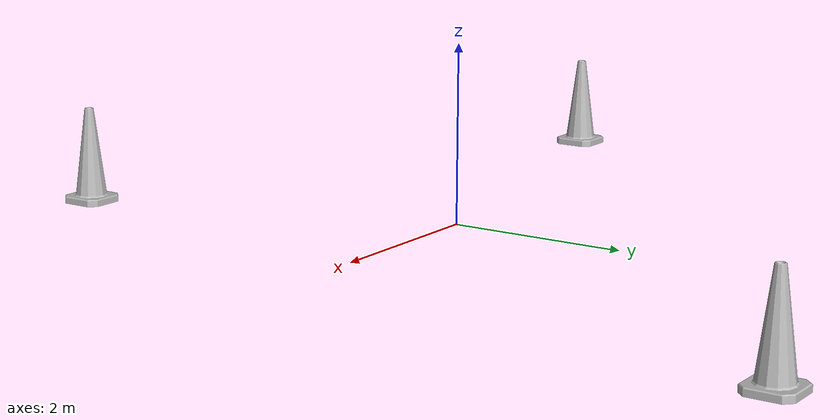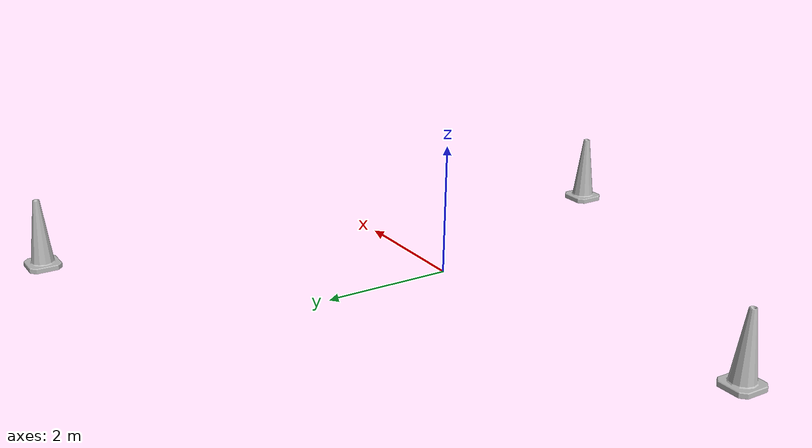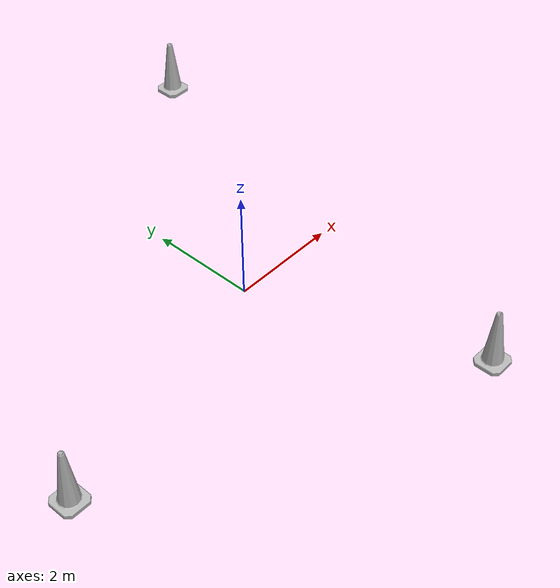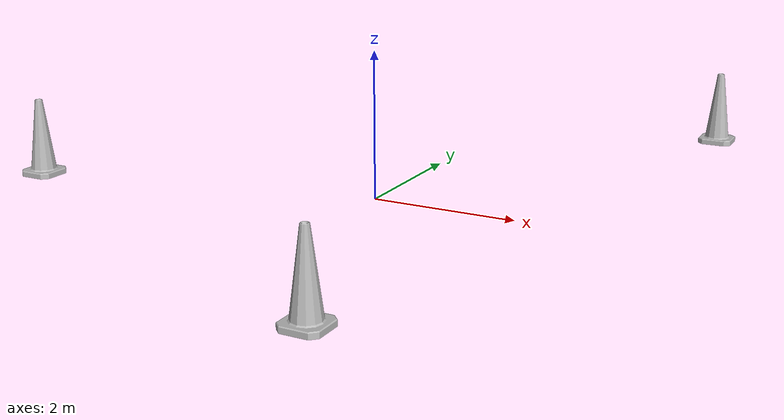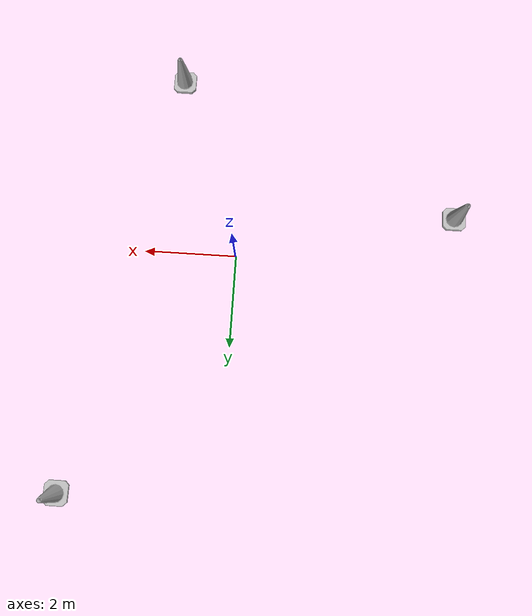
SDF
<?xml version='1.0'?>
<sdf version='1.7'>
  <model name='Untitled'>
    <model name='Construction Cone'>
      <link name='link'>
        <collision name='collision'>
          <geometry>
            <mesh>
              <scale>10 10 10</scale>
              <uri>model://construction_cone/meshes/construction_cone.dae</uri>
            </mesh>
          </geometry>
        </collision>
        <visual name='visual'>
          <geometry>
            <mesh>
              <scale>10 10 10</scale>
              <uri>model://construction_cone/meshes/construction_cone.dae</uri>
            </mesh>
          </geometry>
        </visual>
      </link>
      <pose>-4.78727 -1.14609 0 0 -0 0</pose>
    </model>
    <model name='Construction Cone_0'>
      <link name='link'>
        <collision name='collision'>
          <geometry>
            <mesh>
              <scale>10 10 10</scale>
              <uri>model://construction_cone/meshes/construction_cone.dae</uri>
            </mesh>
          </geometry>
        </collision>
        <visual name='visual'>
          <geometry>
            <mesh>
              <scale>10 10 10</scale>
              <uri>model://construction_cone/meshes/construction_cone.dae</uri>
            </mesh>
          </geometry>
        </visual>
      </link>
      <pose>1.45982 -4.0522 0 0 -0 0</pose>
    </model>
    <model name='Construction Cone_1'>
      <link name='link'>
        <collision name='collision'>
          <geometry>
            <mesh>
              <scale>10 10 10</scale>
              <uri>model://construction_cone/meshes/construction_cone.dae</uri>
            </mesh>
          </geometry>
        </collision>
        <visual name='visual'>
          <geometry>
            <mesh>
              <scale>10 10 10</scale>
              <uri>model://construction_cone/meshes/construction_cone.dae</uri>
            </mesh>
          </geometry>
        </visual>
      </link>
      <pose>3.32744 5.19829 0 0 -0 0</pose>
    </model>
    <static>0</static>
    <allow_auto_disable>1</allow_auto_disable>
  </model>
</sdf>
